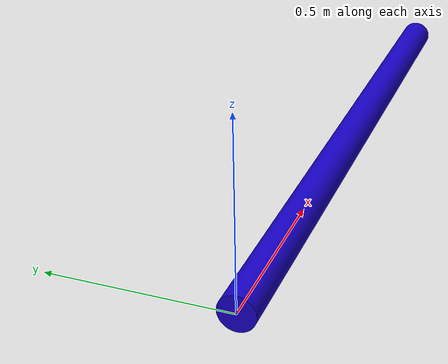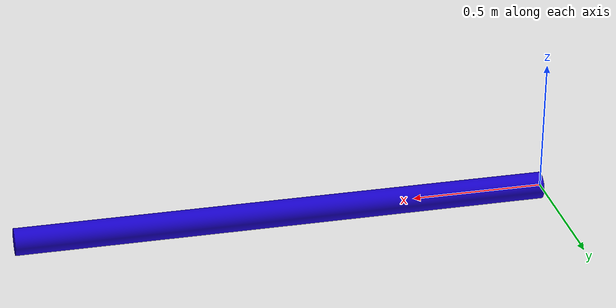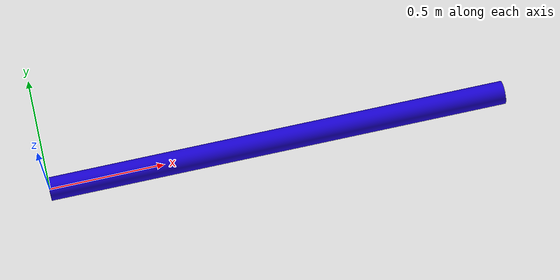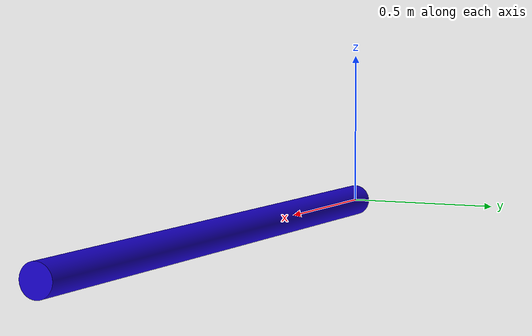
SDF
<?xml version="1.0" ?>
<sdf version="1.5">
  <model name="tube">
    <static>true</static>
    <link name="link">
      <collision name="collision">
        <geometry>
          <mesh>
            <uri>model://tube/meshes/tube.dae</uri>
            <scale>1 1 1</scale>
          </mesh>
        </geometry>
      </collision>
      <visual name="visual">
        <geometry>
          <mesh>
            <uri>model://tube/meshes/tube.dae</uri>
            <scale>1 1 1</scale>
          </mesh>
        </geometry>
      </visual>
    </link>
  </model>
</sdf>
